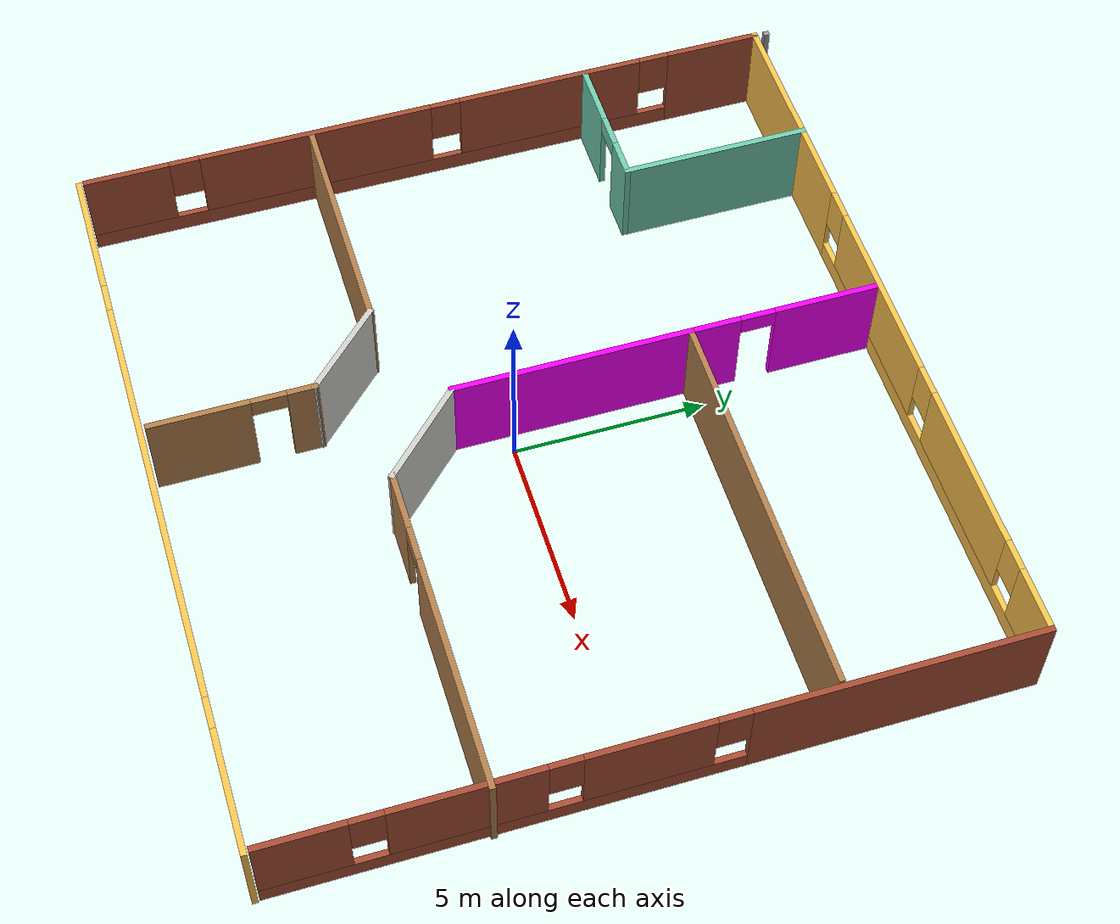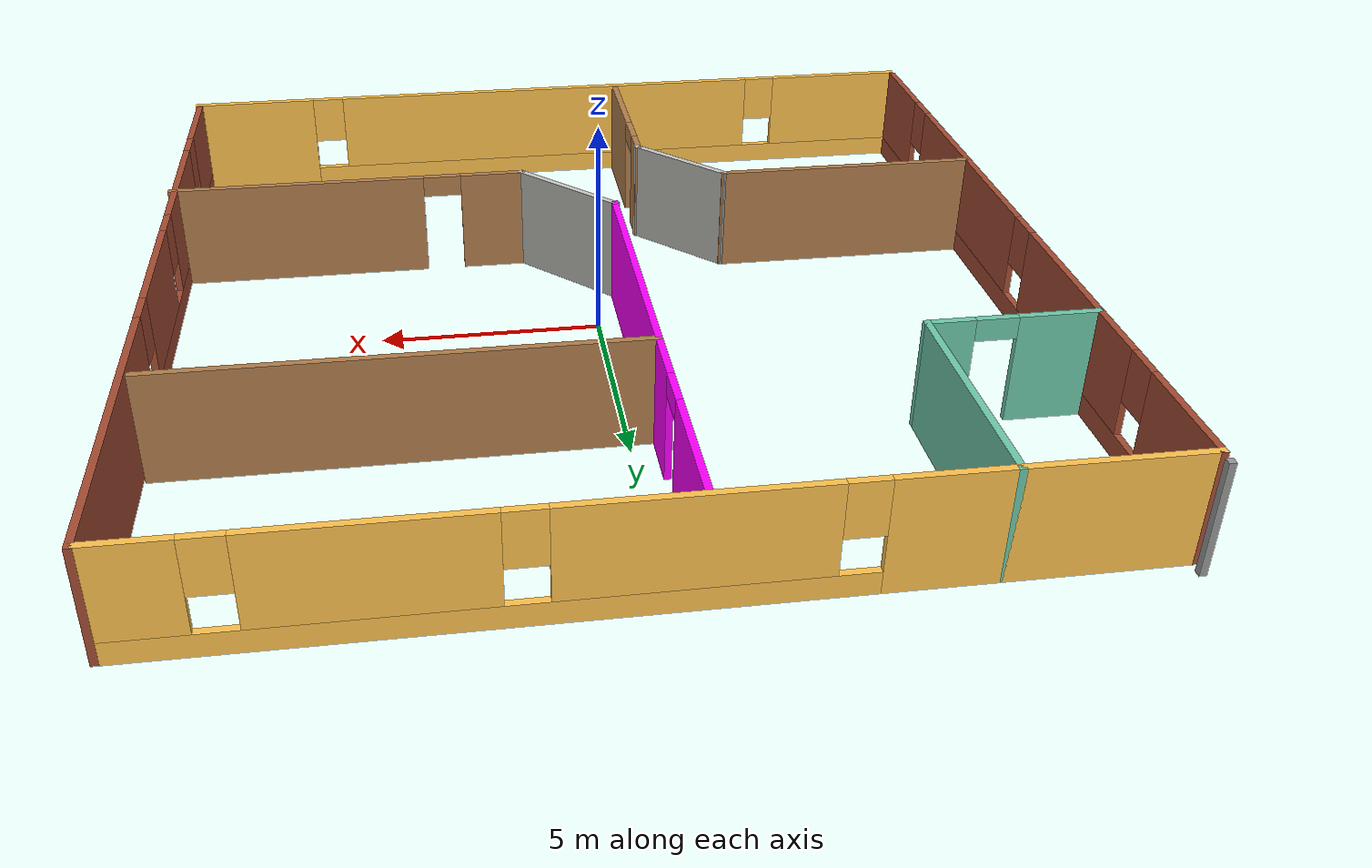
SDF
<?xml version='1.0'?>
<sdf version='1.6'>
  <model name='office'>
    <pose frame=''>0.078104 0.578612 0 0 -0 0</pose>
    <link name='Wall_11'>
      <pose frame=''>-0.002319 -9.425 0 0 -0 3.14159</pose>
      <visual name='Wall_11_Visual_0'>
        <pose frame=''>-8.18908 0 1.25 0 -0 0</pose>
        <geometry>
          <box>
            <size>3.12183 0.15 2.5</size>
          </box>
        </geometry>
        <material>
          <script>
            <uri>file://media/materials/scripts/gazebo.material</uri>
            <name>Gazebo/Grey</name>
          </script>
          <ambient>1 0.764706 0.305882 1</ambient>
        </material>
        <meta>
          <layer>0</layer>
        </meta>
      </visual>
      <collision name='Wall_11_Collision_0'>
        <geometry>
          <box>
            <size>3.12183 0.15 2.5</size>
          </box>
        </geometry>
        <pose frame=''>-8.18908 0 1.25 0 -0 0</pose>
      </collision>
      <visual name='Wall_11_Visual_1'>
        <pose frame=''>1.56092 0 0.25 0 -0 0</pose>
        <geometry>
          <box>
            <size>16.3782 0.15 0.5</size>
          </box>
        </geometry>
        <material>
          <script>
            <uri>file://media/materials/scripts/gazebo.material</uri>
            <name>Gazebo/Grey</name>
          </script>
          <ambient>1 0.764706 0.305882 1</ambient>
        </material>
        <meta>
          <layer>0</layer>
        </meta>
      </visual>
      <collision name='Wall_11_Collision_1'>
        <geometry>
          <box>
            <size>16.3782 0.15 0.5</size>
          </box>
        </geometry>
        <pose frame=''>1.56092 0 0.25 0 -0 0</pose>
      </collision>
      <visual name='Wall_11_Visual_2'>
        <pose frame=''>-0.200284 0 1.5 0 -0 0</pose>
        <geometry>
          <box>
            <size>11.2558 0.15 2</size>
          </box>
        </geometry>
        <material>
          <script>
            <uri>file://media/materials/scripts/gazebo.material</uri>
            <name>Gazebo/Grey</name>
          </script>
          <ambient>1 0.764706 0.305882 1</ambient>
        </material>
        <meta>
          <layer>0</layer>
        </meta>
      </visual>
      <collision name='Wall_11_Collision_2'>
        <geometry>
          <box>
            <size>11.2558 0.15 2</size>
          </box>
        </geometry>
        <pose frame=''>-0.200284 0 1.5 0 -0 0</pose>
      </collision>
      <visual name='Wall_11_Visual_3'>
        <pose frame=''>7.9888 0 1.5 0 -0 0</pose>
        <geometry>
          <box>
            <size>3.5224 0.15 2</size>
          </box>
        </geometry>
        <material>
          <script>
            <uri>file://media/materials/scripts/gazebo.material</uri>
            <name>Gazebo/Grey</name>
          </script>
          <ambient>1 0.764706 0.305882 1</ambient>
        </material>
        <meta>
          <layer>0</layer>
        </meta>
      </visual>
      <collision name='Wall_11_Collision_3'>
        <geometry>
          <box>
            <size>3.5224 0.15 2</size>
          </box>
        </geometry>
        <pose frame=''>7.9888 0 1.5 0 -0 0</pose>
      </collision>
      <visual name='Wall_11_Visual_4'>
        <pose frame=''>-6.22816 0 1.9 0 -0 0</pose>
        <geometry>
          <box>
            <size>0.8 0.15 1.2</size>
          </box>
        </geometry>
        <material>
          <script>
            <uri>file://media/materials/scripts/gazebo.material</uri>
            <name>Gazebo/Grey</name>
          </script>
          <ambient>1 0.764706 0.305882 1</ambient>
        </material>
        <meta>
          <layer>0</layer>
        </meta>
      </visual>
      <collision name='Wall_11_Collision_4'>
        <geometry>
          <box>
            <size>0.8 0.15 1.2</size>
          </box>
        </geometry>
        <pose frame=''>-6.22816 0 1.9 0 -0 0</pose>
      </collision>
      <visual name='Wall_11_Visual_5'>
        <pose frame=''>5.8276 0 1.9 0 -0 0</pose>
        <geometry>
          <box>
            <size>0.8 0.15 1.2</size>
          </box>
        </geometry>
        <material>
          <script>
            <uri>file://media/materials/scripts/gazebo.material</uri>
            <name>Gazebo/Grey</name>
          </script>
          <ambient>1 0.764706 0.305882 1</ambient>
        </material>
        <meta>
          <layer>0</layer>
        </meta>
      </visual>
      <collision name='Wall_11_Collision_5'>
        <geometry>
          <box>
            <size>0.8 0.15 1.2</size>
          </box>
        </geometry>
        <pose frame=''>5.8276 0 1.9 0 -0 0</pose>
      </collision>
    </link>
    <link name='Wall_14'>
      <collision name='Wall_14_Collision'>
        <geometry>
          <box>
            <size>0.15 0.15 2.5</size>
          </box>
        </geometry>
        <pose frame=''>0 0 1.25 0 -0 0</pose>
      </collision>
      <visual name='Wall_14_Visual'>
        <pose frame=''>0 0 1.25 0 -0 0</pose>
        <geometry>
          <box>
            <size>0.15 0.15 2.5</size>
          </box>
        </geometry>
        <material>
          <script>
            <uri>file://media/materials/scripts/gazebo.material</uri>
            <name>Gazebo/Grey</name>
          </script>
          <ambient>1 1 1 1</ambient>
        </material>
        <meta>
          <layer>0</layer>
        </meta>
      </visual>
      <pose frame=''>-9.67732 9.425 0 0 -0 0</pose>
    </link>
    <link name='Wall_18'>
      <pose frame=''>-0.038651 9.10862 0 0 -0 0</pose>
      <visual name='Wall_18_Visual_0'>
        <pose frame=''>-6.75697 0 1.25 0 -0 0</pose>
        <geometry>
          <box>
            <size>5.98607 0.15 2.5</size>
          </box>
        </geometry>
        <material>
          <script>
            <uri>file://media/materials/scripts/gazebo.material</uri>
            <name>Gazebo/Grey</name>
          </script>
          <ambient>1 0.764706 0.305882 1</ambient>
        </material>
        <meta>
          <layer>0</layer>
        </meta>
      </visual>
      <collision name='Wall_18_Collision_0'>
        <geometry>
          <box>
            <size>5.98607 0.15 2.5</size>
          </box>
        </geometry>
        <pose frame=''>-6.75697 0 1.25 0 -0 0</pose>
      </collision>
      <visual name='Wall_18_Visual_1'>
        <pose frame=''>2.99303 0 0.25 0 -0 0</pose>
        <geometry>
          <box>
            <size>13.5139 0.15 0.5</size>
          </box>
        </geometry>
        <material>
          <script>
            <uri>file://media/materials/scripts/gazebo.material</uri>
            <name>Gazebo/Grey</name>
          </script>
          <ambient>1 0.764706 0.305882 1</ambient>
        </material>
        <meta>
          <layer>0</layer>
        </meta>
      </visual>
      <collision name='Wall_18_Collision_1'>
        <geometry>
          <box>
            <size>13.5139 0.15 0.5</size>
          </box>
        </geometry>
        <pose frame=''>2.99303 0 0.25 0 -0 0</pose>
      </collision>
      <visual name='Wall_18_Visual_2'>
        <pose frame=''>-0.451128 0 1.5 0 -0 0</pose>
        <geometry>
          <box>
            <size>5.0256 0.15 2</size>
          </box>
        </geometry>
        <material>
          <script>
            <uri>file://media/materials/scripts/gazebo.material</uri>
            <name>Gazebo/Grey</name>
          </script>
          <ambient>1 0.764706 0.305882 1</ambient>
        </material>
        <meta>
          <layer>0</layer>
        </meta>
      </visual>
      <collision name='Wall_18_Collision_2'>
        <geometry>
          <box>
            <size>5.0256 0.15 2</size>
          </box>
        </geometry>
        <pose frame=''>-0.451128 0 1.5 0 -0 0</pose>
      </collision>
      <visual name='Wall_18_Visual_3'>
        <pose frame=''>5.05083 0 1.5 0 -0 0</pose>
        <geometry>
          <box>
            <size>4.37831 0.15 2</size>
          </box>
        </geometry>
        <material>
          <script>
            <uri>file://media/materials/scripts/gazebo.material</uri>
            <name>Gazebo/Grey</name>
          </script>
          <ambient>1 0.764706 0.305882 1</ambient>
        </material>
        <meta>
          <layer>0</layer>
        </meta>
      </visual>
      <collision name='Wall_18_Collision_3'>
        <geometry>
          <box>
            <size>4.37831 0.15 2</size>
          </box>
        </geometry>
        <pose frame=''>5.05083 0 1.5 0 -0 0</pose>
      </collision>
      <visual name='Wall_18_Visual_4'>
        <pose frame=''>8.89499 0 1.5 0 -0 0</pose>
        <geometry>
          <box>
            <size>1.71001 0.15 2</size>
          </box>
        </geometry>
        <material>
          <script>
            <uri>file://media/materials/scripts/gazebo.material</uri>
            <name>Gazebo/Grey</name>
          </script>
          <ambient>1 0.764706 0.305882 1</ambient>
        </material>
        <meta>
          <layer>0</layer>
        </meta>
      </visual>
      <collision name='Wall_18_Collision_4'>
        <geometry>
          <box>
            <size>1.71001 0.15 2</size>
          </box>
        </geometry>
        <pose frame=''>8.89499 0 1.5 0 -0 0</pose>
      </collision>
      <visual name='Wall_18_Visual_5'>
        <pose frame=''>-3.36393 0 1.9 0 -0 0</pose>
        <geometry>
          <box>
            <size>0.8 0.15 1.2</size>
          </box>
        </geometry>
        <material>
          <script>
            <uri>file://media/materials/scripts/gazebo.material</uri>
            <name>Gazebo/Grey</name>
          </script>
          <ambient>1 0.764706 0.305882 1</ambient>
        </material>
        <meta>
          <layer>0</layer>
        </meta>
      </visual>
      <collision name='Wall_18_Collision_5'>
        <geometry>
          <box>
            <size>0.8 0.15 1.2</size>
          </box>
        </geometry>
        <pose frame=''>-3.36393 0 1.9 0 -0 0</pose>
      </collision>
      <visual name='Wall_18_Visual_6'>
        <pose frame=''>2.46167 0 1.9 0 -0 0</pose>
        <geometry>
          <box>
            <size>0.8 0.15 1.2</size>
          </box>
        </geometry>
        <material>
          <script>
            <uri>file://media/materials/scripts/gazebo.material</uri>
            <name>Gazebo/Grey</name>
          </script>
          <ambient>1 0.764706 0.305882 1</ambient>
        </material>
        <meta>
          <layer>0</layer>
        </meta>
      </visual>
      <collision name='Wall_18_Collision_6'>
        <geometry>
          <box>
            <size>0.8 0.15 1.2</size>
          </box>
        </geometry>
        <pose frame=''>2.46167 0 1.9 0 -0 0</pose>
      </collision>
      <visual name='Wall_18_Visual_7'>
        <pose frame=''>7.63999 0 1.9 0 -0 0</pose>
        <geometry>
          <box>
            <size>0.8 0.15 1.2</size>
          </box>
        </geometry>
        <material>
          <script>
            <uri>file://media/materials/scripts/gazebo.material</uri>
            <name>Gazebo/Grey</name>
          </script>
          <ambient>1 0.764706 0.305882 1</ambient>
        </material>
        <meta>
          <layer>0</layer>
        </meta>
      </visual>
      <collision name='Wall_18_Collision_7'>
        <geometry>
          <box>
            <size>0.8 0.15 1.2</size>
          </box>
        </geometry>
        <pose frame=''>7.63999 0 1.9 0 -0 0</pose>
      </collision>
    </link>
    <link name='Wall_20'>
      <pose frame=''>9.63635 -0.066378 0 0 0 -1.5708</pose>
      <visual name='Wall_20_Visual_0'>
        <pose frame=''>-5.65013 0 1.25 0 -0 0</pose>
        <geometry>
          <box>
            <size>7.19974 0.15 2.5</size>
          </box>
        </geometry>
        <material>
          <script>
            <uri>file://media/materials/scripts/gazebo.material</uri>
            <name>Gazebo/Bricks</name>
          </script>
          <ambient>1 1 1 1</ambient>
        </material>
        <meta>
          <layer>0</layer>
        </meta>
      </visual>
      <collision name='Wall_20_Collision_0'>
        <geometry>
          <box>
            <size>7.19974 0.15 2.5</size>
          </box>
        </geometry>
        <pose frame=''>-5.65013 0 1.25 0 -0 0</pose>
      </collision>
      <visual name='Wall_20_Visual_1'>
        <pose frame=''>3.59987 0 0.25 0 -0 0</pose>
        <geometry>
          <box>
            <size>11.3003 0.15 0.5</size>
          </box>
        </geometry>
        <material>
          <script>
            <uri>file://media/materials/scripts/gazebo.material</uri>
            <name>Gazebo/Bricks</name>
          </script>
          <ambient>1 1 1 1</ambient>
        </material>
        <meta>
          <layer>0</layer>
        </meta>
      </visual>
      <collision name='Wall_20_Collision_1'>
        <geometry>
          <box>
            <size>11.3003 0.15 0.5</size>
          </box>
        </geometry>
        <pose frame=''>3.59987 0 0.25 0 -0 0</pose>
      </collision>
      <visual name='Wall_20_Visual_2'>
        <pose frame=''>0.291605 0 1.5 0 -0 0</pose>
        <geometry>
          <box>
            <size>3.08374 0.15 2</size>
          </box>
        </geometry>
        <material>
          <script>
            <uri>file://media/materials/scripts/gazebo.material</uri>
            <name>Gazebo/Bricks</name>
          </script>
          <ambient>1 1 1 1</ambient>
        </material>
        <meta>
          <layer>0</layer>
        </meta>
      </visual>
      <collision name='Wall_20_Collision_2'>
        <geometry>
          <box>
            <size>3.08374 0.15 2</size>
          </box>
        </geometry>
        <pose frame=''>0.291605 0 1.5 0 -0 0</pose>
      </collision>
      <visual name='Wall_20_Visual_3'>
        <pose frame=''>4.45853 0 1.5 0 -0 0</pose>
        <geometry>
          <box>
            <size>3.65011 0.15 2</size>
          </box>
        </geometry>
        <material>
          <script>
            <uri>file://media/materials/scripts/gazebo.material</uri>
            <name>Gazebo/Bricks</name>
          </script>
          <ambient>1 1 1 1</ambient>
        </material>
        <meta>
          <layer>0</layer>
        </meta>
      </visual>
      <collision name='Wall_20_Collision_3'>
        <geometry>
          <box>
            <size>3.65011 0.15 2</size>
          </box>
        </geometry>
        <pose frame=''>4.45853 0 1.5 0 -0 0</pose>
      </collision>
      <visual name='Wall_20_Visual_4'>
        <pose frame=''>8.16679 0 1.5 0 -0 0</pose>
        <geometry>
          <box>
            <size>2.16641 0.15 2</size>
          </box>
        </geometry>
        <material>
          <script>
            <uri>file://media/materials/scripts/gazebo.material</uri>
            <name>Gazebo/Bricks</name>
          </script>
          <ambient>1 1 1 1</ambient>
        </material>
        <meta>
          <layer>0</layer>
        </meta>
      </visual>
      <collision name='Wall_20_Collision_4'>
        <geometry>
          <box>
            <size>2.16641 0.15 2</size>
          </box>
        </geometry>
        <pose frame=''>8.16679 0 1.5 0 -0 0</pose>
      </collision>
      <visual name='Wall_20_Visual_5'>
        <pose frame=''>-1.65026 0 1.9 0 -0 0</pose>
        <geometry>
          <box>
            <size>0.8 0.15 1.2</size>
          </box>
        </geometry>
        <material>
          <script>
            <uri>file://media/materials/scripts/gazebo.material</uri>
            <name>Gazebo/Bricks</name>
          </script>
          <ambient>1 1 1 1</ambient>
        </material>
        <meta>
          <layer>0</layer>
        </meta>
      </visual>
      <collision name='Wall_20_Collision_5'>
        <geometry>
          <box>
            <size>0.8 0.15 1.2</size>
          </box>
        </geometry>
        <pose frame=''>-1.65026 0 1.9 0 -0 0</pose>
      </collision>
      <visual name='Wall_20_Visual_6'>
        <pose frame=''>2.23347 0 1.9 0 -0 0</pose>
        <geometry>
          <box>
            <size>0.8 0.15 1.2</size>
          </box>
        </geometry>
        <material>
          <script>
            <uri>file://media/materials/scripts/gazebo.material</uri>
            <name>Gazebo/Bricks</name>
          </script>
          <ambient>1 1 1 1</ambient>
        </material>
        <meta>
          <layer>0</layer>
        </meta>
      </visual>
      <collision name='Wall_20_Collision_6'>
        <geometry>
          <box>
            <size>0.8 0.15 1.2</size>
          </box>
        </geometry>
        <pose frame=''>2.23347 0 1.9 0 -0 0</pose>
      </collision>
      <visual name='Wall_20_Visual_7'>
        <pose frame=''>6.68359 0 1.9 0 -0 0</pose>
        <geometry>
          <box>
            <size>0.8 0.15 1.2</size>
          </box>
        </geometry>
        <material>
          <script>
            <uri>file://media/materials/scripts/gazebo.material</uri>
            <name>Gazebo/Bricks</name>
          </script>
          <ambient>1 1 1 1</ambient>
        </material>
        <meta>
          <layer>0</layer>
        </meta>
      </visual>
      <collision name='Wall_20_Collision_7'>
        <geometry>
          <box>
            <size>0.8 0.15 1.2</size>
          </box>
        </geometry>
        <pose frame=''>6.68359 0 1.9 0 -0 0</pose>
      </collision>
    </link>
    <link name='Wall_22'>
      <pose frame=''>-9.71365 -0.066378 0 0 0 -1.5708</pose>
      <visual name='Wall_22_Visual_0'>
        <pose frame=''>-7.9561 0 1.25 0 -0 0</pose>
        <geometry>
          <box>
            <size>2.5878 0.15 2.5</size>
          </box>
        </geometry>
        <material>
          <script>
            <uri>file://media/materials/scripts/gazebo.material</uri>
            <name>Gazebo/Bricks</name>
          </script>
          <ambient>1 1 1 1</ambient>
        </material>
        <meta>
          <layer>0</layer>
        </meta>
      </visual>
      <collision name='Wall_22_Collision_0'>
        <geometry>
          <box>
            <size>2.5878 0.15 2.5</size>
          </box>
        </geometry>
        <pose frame=''>-7.9561 0 1.25 0 -0 0</pose>
      </collision>
      <visual name='Wall_22_Visual_1'>
        <pose frame=''>1.2939 0 0.25 0 -0 0</pose>
        <geometry>
          <box>
            <size>15.9122 0.15 0.5</size>
          </box>
        </geometry>
        <material>
          <script>
            <uri>file://media/materials/scripts/gazebo.material</uri>
            <name>Gazebo/Bricks</name>
          </script>
          <ambient>1 1 1 1</ambient>
        </material>
        <meta>
          <layer>0</layer>
        </meta>
      </visual>
      <collision name='Wall_22_Collision_1'>
        <geometry>
          <box>
            <size>15.9122 0.15 0.5</size>
          </box>
        </geometry>
        <pose frame=''>1.2939 0 0.25 0 -0 0</pose>
      </collision>
      <visual name='Wall_22_Visual_2'>
        <pose frame=''>-3.3494 0 1.5 0 -0 0</pose>
        <geometry>
          <box>
            <size>5.0256 0.15 2</size>
          </box>
        </geometry>
        <material>
          <script>
            <uri>file://media/materials/scripts/gazebo.material</uri>
            <name>Gazebo/Bricks</name>
          </script>
          <ambient>1 1 1 1</ambient>
        </material>
        <meta>
          <layer>0</layer>
        </meta>
      </visual>
      <collision name='Wall_22_Collision_2'>
        <geometry>
          <box>
            <size>5.0256 0.15 2</size>
          </box>
        </geometry>
        <pose frame=''>-3.3494 0 1.5 0 -0 0</pose>
      </collision>
      <visual name='Wall_22_Visual_3'>
        <pose frame=''>3.08304 0 1.5 0 -0 0</pose>
        <geometry>
          <box>
            <size>6.23927 0.15 2</size>
          </box>
        </geometry>
        <material>
          <script>
            <uri>file://media/materials/scripts/gazebo.material</uri>
            <name>Gazebo/Bricks</name>
          </script>
          <ambient>1 1 1 1</ambient>
        </material>
        <meta>
          <layer>0</layer>
        </meta>
      </visual>
      <collision name='Wall_22_Collision_3'>
        <geometry>
          <box>
            <size>6.23927 0.15 2</size>
          </box>
        </geometry>
        <pose frame=''>3.08304 0 1.5 0 -0 0</pose>
      </collision>
      <visual name='Wall_22_Visual_4'>
        <pose frame=''>8.12634 0 1.5 0 -0 0</pose>
        <geometry>
          <box>
            <size>2.24733 0.15 2</size>
          </box>
        </geometry>
        <material>
          <script>
            <uri>file://media/materials/scripts/gazebo.material</uri>
            <name>Gazebo/Bricks</name>
          </script>
          <ambient>1 1 1 1</ambient>
        </material>
        <meta>
          <layer>0</layer>
        </meta>
      </visual>
      <collision name='Wall_22_Collision_4'>
        <geometry>
          <box>
            <size>2.24733 0.15 2</size>
          </box>
        </geometry>
        <pose frame=''>8.12634 0 1.5 0 -0 0</pose>
      </collision>
      <visual name='Wall_22_Visual_5'>
        <pose frame=''>-6.2622 0 1.9 0 -0 0</pose>
        <geometry>
          <box>
            <size>0.8 0.15 1.2</size>
          </box>
        </geometry>
        <material>
          <script>
            <uri>file://media/materials/scripts/gazebo.material</uri>
            <name>Gazebo/Bricks</name>
          </script>
          <ambient>1 1 1 1</ambient>
        </material>
        <meta>
          <layer>0</layer>
        </meta>
      </visual>
      <collision name='Wall_22_Collision_5'>
        <geometry>
          <box>
            <size>0.8 0.15 1.2</size>
          </box>
        </geometry>
        <pose frame=''>-6.2622 0 1.9 0 -0 0</pose>
      </collision>
      <visual name='Wall_22_Visual_6'>
        <pose frame=''>-0.436595 0 1.9 0 -0 0</pose>
        <geometry>
          <box>
            <size>0.8 0.15 1.2</size>
          </box>
        </geometry>
        <material>
          <script>
            <uri>file://media/materials/scripts/gazebo.material</uri>
            <name>Gazebo/Bricks</name>
          </script>
          <ambient>1 1 1 1</ambient>
        </material>
        <meta>
          <layer>0</layer>
        </meta>
      </visual>
      <collision name='Wall_22_Collision_6'>
        <geometry>
          <box>
            <size>0.8 0.15 1.2</size>
          </box>
        </geometry>
        <pose frame=''>-0.436595 0 1.9 0 -0 0</pose>
      </collision>
      <visual name='Wall_22_Visual_7'>
        <pose frame=''>6.60267 0 1.9 0 -0 0</pose>
        <geometry>
          <box>
            <size>0.8 0.15 1.2</size>
          </box>
        </geometry>
        <material>
          <script>
            <uri>file://media/materials/scripts/gazebo.material</uri>
            <name>Gazebo/Bricks</name>
          </script>
          <ambient>1 1 1 1</ambient>
        </material>
        <meta>
          <layer>0</layer>
        </meta>
      </visual>
      <collision name='Wall_22_Collision_7'>
        <geometry>
          <box>
            <size>0.8 0.15 1.2</size>
          </box>
        </geometry>
        <pose frame=''>6.60267 0 1.9 0 -0 0</pose>
      </collision>
    </link>
    <link name='Wall_24'>
      <collision name='Wall_24_Collision'>
        <geometry>
          <box>
            <size>5 0.15 2.5</size>
          </box>
        </geometry>
        <pose frame=''>0 0 1.25 0 -0 0</pose>
      </collision>
      <visual name='Wall_24_Visual'>
        <pose frame=''>0 0 1.25 0 -0 0</pose>
        <geometry>
          <box>
            <size>5 0.15 2.5</size>
          </box>
        </geometry>
        <material>
          <script>
            <uri>file://media/materials/scripts/gazebo.material</uri>
            <name>Gazebo/Grey</name>
          </script>
          <ambient>0.435294 0.796078 0.67451 1</ambient>
        </material>
        <meta>
          <layer>0</layer>
        </meta>
      </visual>
      <pose frame=''>-6.07265 6.68362 0 0 0 -1.5708</pose>
    </link>
    <link name='Wall_25'>
      <pose frame=''>-7.87265 4.25862 0 0 -0 3.14159</pose>
      <visual name='Wall_25_Visual_0'>
        <pose frame=''>-1.3343 0 1.25 0 -0 0</pose>
        <geometry>
          <box>
            <size>1.0814 0.15 2.5</size>
          </box>
        </geometry>
        <material>
          <script>
            <uri>file://media/materials/scripts/gazebo.material</uri>
            <name>Gazebo/Grey</name>
          </script>
          <ambient>0.435294 0.796078 0.67451 1</ambient>
        </material>
        <meta>
          <layer>0</layer>
        </meta>
      </visual>
      <collision name='Wall_25_Collision_0'>
        <geometry>
          <box>
            <size>1.0814 0.15 2.5</size>
          </box>
        </geometry>
        <pose frame=''>-1.3343 0 1.25 0 -0 0</pose>
      </collision>
      <visual name='Wall_25_Visual_1'>
        <pose frame=''>0.9907 0 1.25 0 -0 0</pose>
        <geometry>
          <box>
            <size>1.7686 0.15 2.5</size>
          </box>
        </geometry>
        <material>
          <script>
            <uri>file://media/materials/scripts/gazebo.material</uri>
            <name>Gazebo/Grey</name>
          </script>
          <ambient>0.435294 0.796078 0.67451 1</ambient>
        </material>
        <meta>
          <layer>0</layer>
        </meta>
      </visual>
      <collision name='Wall_25_Collision_1'>
        <geometry>
          <box>
            <size>1.7686 0.15 2.5</size>
          </box>
        </geometry>
        <pose frame=''>0.9907 0 1.25 0 -0 0</pose>
      </collision>
      <visual name='Wall_25_Visual_2'>
        <pose frame=''>-0.343599 0 2.25 0 -0 0</pose>
        <geometry>
          <box>
            <size>0.9 0.15 0.5</size>
          </box>
        </geometry>
        <material>
          <script>
            <uri>file://media/materials/scripts/gazebo.material</uri>
            <name>Gazebo/Grey</name>
          </script>
          <ambient>0.435294 0.796078 0.67451 1</ambient>
        </material>
        <meta>
          <layer>0</layer>
        </meta>
      </visual>
      <collision name='Wall_25_Collision_2'>
        <geometry>
          <box>
            <size>0.9 0.15 0.5</size>
          </box>
        </geometry>
        <pose frame=''>-0.343599 0 2.25 0 -0 0</pose>
      </collision>
    </link>
    <link name='Wall_27'>
      <collision name='Wall_27_Collision'>
        <geometry>
          <box>
            <size>6.25 0.15 2.5</size>
          </box>
        </geometry>
        <pose frame=''>0 0 1.25 0 -0 0</pose>
      </collision>
      <visual name='Wall_27_Visual'>
        <pose frame=''>0 0 1.25 0 -0 0</pose>
        <geometry>
          <box>
            <size>6.25 0.15 2.5</size>
          </box>
        </geometry>
        <material>
          <script>
            <uri>file://media/materials/scripts/gazebo.material</uri>
            <name>Gazebo/Wood</name>
          </script>
          <ambient>1 1 1 1</ambient>
        </material>
        <meta>
          <layer>0</layer>
        </meta>
      </visual>
      <pose frame=''>-6.58274 -3.27079 0 0 -0 0</pose>
    </link>
    <link name='Wall_28'>
      <collision name='Wall_28_Collision'>
        <geometry>
          <box>
            <size>2.75 0.15 2.5</size>
          </box>
        </geometry>
        <pose frame=''>0 0 1.25 0 -0 0</pose>
      </collision>
      <visual name='Wall_28_Visual'>
        <pose frame=''>0 0 1.25 0 -0 0</pose>
        <geometry>
          <box>
            <size>2.75 0.15 2.5</size>
          </box>
        </geometry>
        <material>
          <script>
            <uri>file://media/materials/scripts/gazebo.material</uri>
            <name>Gazebo/CeilingTiled</name>
          </script>
          <ambient>1 1 1 1</ambient>
        </material>
        <meta>
          <layer>0</layer>
        </meta>
      </visual>
      <pose frame=''>-2.6135 -4.19002 0 0 0 -0.785398</pose>
    </link>
    <link name='Wall_29'>
      <pose frame=''>-1.69426 -7.15926 0 0 0 -1.5708</pose>
      <visual name='Wall_29_Visual_0'>
        <pose frame=''>-1.73488 0 1.25 0 -0 0</pose>
        <geometry>
          <box>
            <size>0.780235 0.15 2.5</size>
          </box>
        </geometry>
        <material>
          <script>
            <uri>file://media/materials/scripts/gazebo.material</uri>
            <name>Gazebo/Wood</name>
          </script>
          <ambient>1 1 1 1</ambient>
        </material>
        <meta>
          <layer>0</layer>
        </meta>
      </visual>
      <collision name='Wall_29_Collision_0'>
        <geometry>
          <box>
            <size>0.780235 0.15 2.5</size>
          </box>
        </geometry>
        <pose frame=''>-1.73488 0 1.25 0 -0 0</pose>
      </collision>
      <visual name='Wall_29_Visual_1'>
        <pose frame=''>0.840118 0 1.25 0 -0 0</pose>
        <geometry>
          <box>
            <size>2.56976 0.15 2.5</size>
          </box>
        </geometry>
        <material>
          <script>
            <uri>file://media/materials/scripts/gazebo.material</uri>
            <name>Gazebo/Wood</name>
          </script>
          <ambient>1 1 1 1</ambient>
        </material>
        <meta>
          <layer>0</layer>
        </meta>
      </visual>
      <collision name='Wall_29_Collision_1'>
        <geometry>
          <box>
            <size>2.56976 0.15 2.5</size>
          </box>
        </geometry>
        <pose frame=''>0.840118 0 1.25 0 -0 0</pose>
      </collision>
      <visual name='Wall_29_Visual_2'>
        <pose frame=''>-0.894765 0 2.25 0 -0 0</pose>
        <geometry>
          <box>
            <size>0.9 0.15 0.5</size>
          </box>
        </geometry>
        <material>
          <script>
            <uri>file://media/materials/scripts/gazebo.material</uri>
            <name>Gazebo/Wood</name>
          </script>
          <ambient>1 1 1 1</ambient>
        </material>
        <meta>
          <layer>0</layer>
        </meta>
      </visual>
      <collision name='Wall_29_Collision_2'>
        <geometry>
          <box>
            <size>0.9 0.15 0.5</size>
          </box>
        </geometry>
        <pose frame=''>-0.894765 0 2.25 0 -0 0</pose>
      </collision>
    </link>
    <link name='Wall_31'>
      <collision name='Wall_31_Collision'>
        <geometry>
          <box>
            <size>3 0.15 2.5</size>
          </box>
        </geometry>
        <pose frame=''>0 0 1.25 0 -0 0</pose>
      </collision>
      <visual name='Wall_31_Visual'>
        <pose frame=''>0 0 1.25 0 -0 0</pose>
        <geometry>
          <box>
            <size>3 0.15 2.5</size>
          </box>
        </geometry>
        <material>
          <script>
            <uri>file://media/materials/scripts/gazebo.material</uri>
            <name>Gazebo/CeilingTiled</name>
          </script>
          <ambient>1 1 1 1</ambient>
        </material>
        <meta>
          <layer>0</layer>
        </meta>
      </visual>
      <pose frame=''>0.356025 -2.98383 0 0 0 -0.785398</pose>
    </link>
    <link name='Wall_32'>
      <pose frame=''>5.53865 -3.99146 0 0 -0 0</pose>
      <visual name='Wall_32_Visual_0'>
        <pose frame=''>-3.4628 0 1.25 0 -0 0</pose>
        <geometry>
          <box>
            <size>1.57439 0.15 2.5</size>
          </box>
        </geometry>
        <material>
          <script>
            <uri>file://media/materials/scripts/gazebo.material</uri>
            <name>Gazebo/Wood</name>
          </script>
          <ambient>1 1 1 1</ambient>
        </material>
        <meta>
          <layer>0</layer>
        </meta>
      </visual>
      <collision name='Wall_32_Collision_0'>
        <geometry>
          <box>
            <size>1.57439 0.15 2.5</size>
          </box>
        </geometry>
        <pose frame=''>-3.4628 0 1.25 0 -0 0</pose>
      </collision>
      <visual name='Wall_32_Visual_1'>
        <pose frame=''>1.2372 0 1.25 0 -0 0</pose>
        <geometry>
          <box>
            <size>6.02561 0.15 2.5</size>
          </box>
        </geometry>
        <material>
          <script>
            <uri>file://media/materials/scripts/gazebo.material</uri>
            <name>Gazebo/Wood</name>
          </script>
          <ambient>1 1 1 1</ambient>
        </material>
        <meta>
          <layer>0</layer>
        </meta>
      </visual>
      <collision name='Wall_32_Collision_1'>
        <geometry>
          <box>
            <size>6.02561 0.15 2.5</size>
          </box>
        </geometry>
        <pose frame=''>1.2372 0 1.25 0 -0 0</pose>
      </collision>
      <visual name='Wall_32_Visual_2'>
        <pose frame=''>-2.22561 0 2.25 0 -0 0</pose>
        <geometry>
          <box>
            <size>0.9 0.15 0.5</size>
          </box>
        </geometry>
        <material>
          <script>
            <uri>file://media/materials/scripts/gazebo.material</uri>
            <name>Gazebo/Wood</name>
          </script>
          <ambient>1 1 1 1</ambient>
        </material>
        <meta>
          <layer>0</layer>
        </meta>
      </visual>
      <collision name='Wall_32_Collision_2'>
        <geometry>
          <box>
            <size>0.9 0.15 0.5</size>
          </box>
        </geometry>
        <pose frame=''>-2.22561 0 2.25 0 -0 0</pose>
      </collision>
    </link>
    <link name='Wall_34'>
      <collision name='Wall_34_Collision'>
        <geometry>
          <box>
            <size>6.25 0.15 2.5</size>
          </box>
        </geometry>
        <pose frame=''>0 0 1.25 0 -0 0</pose>
      </collision>
      <visual name='Wall_34_Visual'>
        <pose frame=''>0 0 1.25 0 -0 0</pose>
        <geometry>
          <box>
            <size>6.25 0.15 2.5</size>
          </box>
        </geometry>
        <material>
          <script>
            <uri>file://media/materials/scripts/gazebo.material</uri>
            <name>Gazebo/Grey</name>
          </script>
          <ambient>1 0 1 1</ambient>
        </material>
        <meta>
          <layer>0</layer>
        </meta>
      </visual>
      <pose frame=''>-0.651602 1.07379 0 0 -0 1.5708</pose>
    </link>
    <link name='Wall_35'>
      <collision name='Wall_35_Collision'>
        <geometry>
          <box>
            <size>10.25 0.15 2.5</size>
          </box>
        </geometry>
        <pose frame=''>0 0 1.25 0 -0 0</pose>
      </collision>
      <visual name='Wall_35_Visual'>
        <pose frame=''>0 0 1.25 0 -0 0</pose>
        <geometry>
          <box>
            <size>10.25 0.15 2.5</size>
          </box>
        </geometry>
        <material>
          <script>
            <uri>file://media/materials/scripts/gazebo.material</uri>
            <name>Gazebo/Wood</name>
          </script>
          <ambient>1 1 1 1</ambient>
        </material>
        <meta>
          <layer>0</layer>
        </meta>
      </visual>
      <pose frame=''>4.3984 4.12379 0 0 -0 0</pose>
    </link>
    <link name='Wall_38'>
      <pose frame=''>-0.651602 6.54879 0 0 -0 1.5708</pose>
      <visual name='Wall_38_Visual_0'>
        <pose frame=''>-1.81331 0 1.25 0 -0 0</pose>
        <geometry>
          <box>
            <size>1.37338 0.15 2.5</size>
          </box>
        </geometry>
        <material>
          <script>
            <uri>file://media/materials/scripts/gazebo.material</uri>
            <name>Gazebo/Grey</name>
          </script>
          <ambient>1 0 1 1</ambient>
        </material>
        <meta>
          <layer>0</layer>
        </meta>
      </visual>
      <collision name='Wall_38_Collision_0'>
        <geometry>
          <box>
            <size>1.37338 0.15 2.5</size>
          </box>
        </geometry>
        <pose frame=''>-1.81331 0 1.25 0 -0 0</pose>
      </collision>
      <visual name='Wall_38_Visual_1'>
        <pose frame=''>1.13669 0 1.25 0 -0 0</pose>
        <geometry>
          <box>
            <size>2.72662 0.15 2.5</size>
          </box>
        </geometry>
        <material>
          <script>
            <uri>file://media/materials/scripts/gazebo.material</uri>
            <name>Gazebo/Grey</name>
          </script>
          <ambient>1 0 1 1</ambient>
        </material>
        <meta>
          <layer>0</layer>
        </meta>
      </visual>
      <collision name='Wall_38_Collision_1'>
        <geometry>
          <box>
            <size>2.72662 0.15 2.5</size>
          </box>
        </geometry>
        <pose frame=''>1.13669 0 1.25 0 -0 0</pose>
      </collision>
      <visual name='Wall_38_Visual_2'>
        <pose frame=''>-0.676618 0 2.25 0 -0 0</pose>
        <geometry>
          <box>
            <size>0.9 0.15 0.5</size>
          </box>
        </geometry>
        <material>
          <script>
            <uri>file://media/materials/scripts/gazebo.material</uri>
            <name>Gazebo/Grey</name>
          </script>
          <ambient>1 0 1 1</ambient>
        </material>
        <meta>
          <layer>0</layer>
        </meta>
      </visual>
      <collision name='Wall_38_Collision_2'>
        <geometry>
          <box>
            <size>0.9 0.15 0.5</size>
          </box>
        </geometry>
        <pose frame=''>-0.676618 0 2.25 0 -0 0</pose>
      </collision>
    </link>
    <static>1</static>
  </model>
</sdf>
